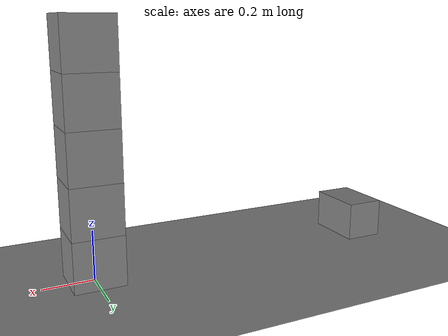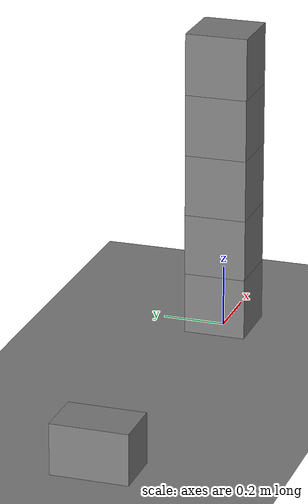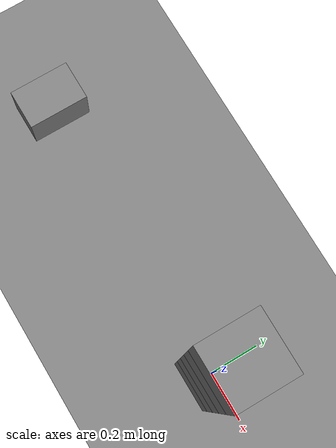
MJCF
<mujoco model="stack_fixture">
  <option timestep="0.002"/>
  <worldbody>
    <geom name="floor" type="plane" size="6 6 0.1" friction="0.6 0.005 0.0001"/>
    <body name="block1" pos="0 0 0.100">
      <freejoint/>
      <geom name="block1" type="box" size="0.1 0.1 0.1" mass="0.5" friction="0.6 0.005 0.0001"/>
    </body>
    <body name="block2" pos="0 0 0.300">
      <freejoint/>
      <geom name="block2" type="box" size="0.1 0.1 0.1" mass="0.5" friction="0.6 0.005 0.0001"/>
    </body>
    <body name="block3" pos="0 0 0.500">
      <freejoint/>
      <geom name="block3" type="box" size="0.1 0.1 0.1" mass="0.5" friction="0.6 0.005 0.0001"/>
    </body>
    <body name="block4" pos="0 0 0.700">
      <freejoint/>
      <geom name="block4" type="box" size="0.1 0.1 0.1" mass="0.5" friction="0.6 0.005 0.0001"/>
    </body>
    <body name="block5" pos="0 0 0.900">
      <freejoint/>
      <geom name="block5" type="box" size="0.1 0.1 0.1" mass="0.5" friction="0.6 0.005 0.0001"/>
    </body>
    <body name="pusher" pos="-1.2 0 0.1">
      <joint name="pusher_slide" type="slide" axis="1 0 0" limited="true" range="0 1.8" damping="0"/>
      <geom name="pusher" type="box" size="0.08 0.12 0.08" mass="4.0" friction="0.3 0.005 0.0001"/>
    </body>
  </worldbody>
  <actuator>
    <motor name="pusher_motor" joint="pusher_slide" gear="1" ctrllimited="true" ctrlrange="0 60"/>
  </actuator>
  <keyframe>
    <key name="start" qpos="0 0 0.100 1 0 0 0  0 0 0.300 1 0 0 0  0 0 0.500 1 0 0 0  0 0 0.700 1 0 0 0  0 0 0.900 1 0 0 0  0" qvel="0 0 0 0 0 0  0 0 0 0 0 0  0 0 0 0 0 0  0 0 0 0 0 0  0 0 0 0 0 0  0" ctrl="40"/>
  </keyframe>
</mujoco>
